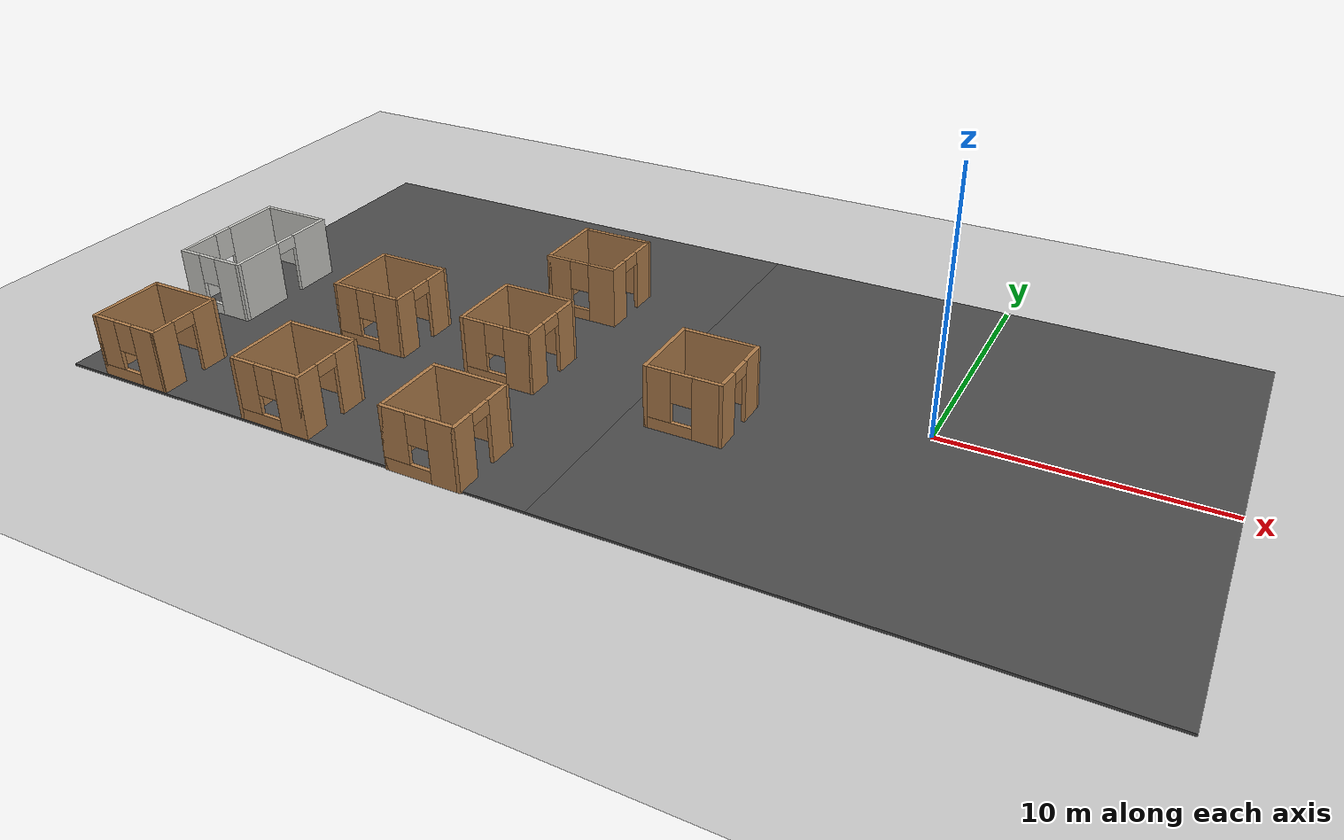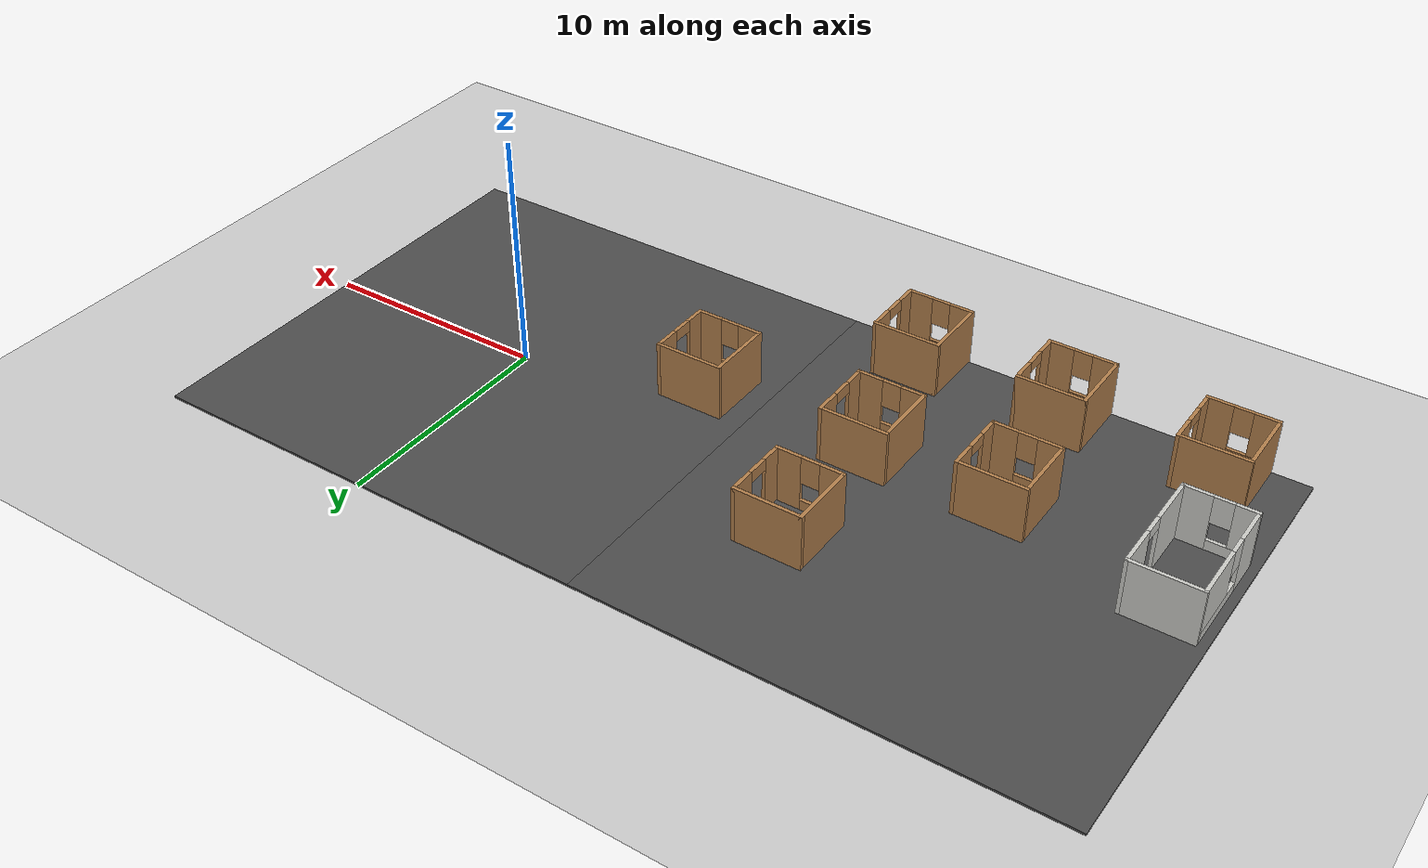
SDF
<sdf version="1.6">
 <world name="default">
  <model name="ground_plane">
   <static>1</static>
   <link name="link">
    <collision name="collision">
     <geometry><plane><normal>0 0 1</normal><size>100 100</size></plane></geometry>
     <surface><friction><ode><mu>100</mu><mu2>50</mu2></ode></friction></surface>
    </collision>
    <visual name="visual">
     <cast_shadows>0</cast_shadows>
     <geometry><plane><normal>0 0 1</normal><size>100 100</size></plane></geometry>
     <material>
      <script><uri>file://media/materials/scripts/gazebo.material</uri><name>Gazebo/Grey</name></script>
     </material>
    </visual>
   </link>
  </model>
  <model name="asphalt_plane">
   <static>1</static>
   <link name="link">
    <collision name="collision"><geometry><box><size>20 20 0.1</size></box></geometry></collision>
    <visual name="visual">
     <cast_shadows>0</cast_shadows>
     <geometry><box><size>20 20 0.1</size></box></geometry>
     <material>
      <script>
       <uri>model://asphalt_plane/materials/scripts</uri>
       <uri>model://asphalt_plane/materials/textures</uri>
       <name>vrc/asphalt</name>
      </script>
     </material>
    </visual>
   </link>
  </model>
  <model name="asphalt_plane_1">
   <static>1</static>
   <link name="link">
    <collision name="collision"><geometry><box><size>20 20 0.1</size></box></geometry></collision>
    <visual name="visual">
     <cast_shadows>0</cast_shadows>
     <geometry><box><size>20 20 0.1</size></box></geometry>
     <material>
      <script>
       <uri>model://asphalt_plane/materials/scripts</uri>
       <uri>model://asphalt_plane/materials/textures</uri>
       <name>vrc/asphalt</name>
      </script>
     </material>
    </visual>
   </link>
   <pose>-20 0 0 0 -0 0</pose>
  </model>
  <model name="house1_0_clone">
   <pose>-26.8484 -8.47265 0 0 -0 3.14</pose>
   <link name="Wall_2">
    <pose>0 1.425 0 0 -0 0</pose>
    <visual name="Wall_2_Visual_0">
     <pose>-0.9275 0 1.25 0 -0 0</pose>
     <geometry><box><size>1.145 0.15 2.5</size></box></geometry>
     <material>
      <script><uri>file://media/materials/scripts/gazebo.material</uri><name>Gazebo/Wood</name></script>
      <ambient>1 1 1 1</ambient>
     </material>
     <meta><layer>0</layer></meta>
    </visual>
    <collision name="Wall_2_Collision_0">
     <geometry><box><size>1.145 0.15 2.5</size></box></geometry>
     <pose>-0.9275 0 1.25 0 -0 0</pose>
    </collision>
    <visual name="Wall_2_Visual_1">
     <pose>0.5725 0 0.25 0 -0 0</pose>
     <geometry><box><size>1.855 0.15 0.5</size></box></geometry>
     <material>
      <script><uri>file://media/materials/scripts/gazebo.material</uri><name>Gazebo/Wood</name></script>
      <ambient>1 1 1 1</ambient>
     </material>
     <meta><layer>0</layer></meta>
    </visual>
    <collision name="Wall_2_Collision_1">
     <geometry><box><size>1.855 0.15 0.5</size></box></geometry>
     <pose>0.5725 0 0.25 0 -0 0</pose>
    </collision>
    <visual name="Wall_2_Visual_2">
     <pose>0.9725 0 1.5 0 -0 0</pose>
     <geometry><box><size>1.055 0.15 2</size></box></geometry>
     <material>
      <script><uri>file://media/materials/scripts/gazebo.material</uri><name>Gazebo/Wood</name></script>
      <ambient>1 1 1 1</ambient>
     </material>
     <meta><layer>0</layer></meta>
    </visual>
    <collision name="Wall_2_Collision_2">
     <geometry><box><size>1.055 0.15 2</size></box></geometry>
     <pose>0.9725 0 1.5 0 -0 0</pose>
    </collision>
    <visual name="Wall_2_Visual_3">
     <pose>0.045 0 1.9 0 -0 0</pose>
     <geometry><box><size>0.8 0.15 1.2</size></box></geometry>
     <material>
      <script><uri>file://media/materials/scripts/gazebo.material</uri><name>Gazebo/Wood</name></script>
      <ambient>1 1 1 1</ambient>
     </material>
     <meta><layer>0</layer></meta>
    </visual>
    <collision name="Wall_2_Collision_3">
     <geometry><box><size>0.8 0.15 1.2</size></box></geometry>
     <pose>0.045 0 1.9 0 -0 0</pose>
    </collision>
   </link>
   <link name="Wall_3">
    <collision name="Wall_3_Collision">
     <geometry><box><size>3 0.15 2.5</size></box></geometry>
     <pose>0 0 1.25 0 -0 0</pose>
    </collision>
    <visual name="Wall_3_Visual">
     <pose>0 0 1.25 0 -0 0</pose>
     <geometry><box><size>3 0.15 2.5</size></box></geometry>
     <material>
      <script><uri>file://media/materials/scripts/gazebo.material</uri><name>Gazebo/Wood</name></script>
      <ambient>1 1 1 1</ambient>
     </material>
     <meta><layer>0</layer></meta>
    </visual>
    <pose>1.425 0 0 0 -0 -1.5708</pose>
   </link>
   <link name="Wall_4">
    <collision name="Wall_4_Collision">
     <geometry><box><size>3 0.15 2.5</size></box></geometry>
     <pose>0 0 1.25 0 -0 0</pose>
    </collision>
    <visual name="Wall_4_Visual">
     <pose>0 0 1.25 0 -0 0</pose>
     <geometry><box><size>3 0.15 2.5</size></box></geometry>
     <material>
      <script><uri>file://media/materials/scripts/gazebo.material</uri><name>Gazebo/Wood</name></script>
      <ambient>1 1 1 1</ambient>
     </material>
     <meta><layer>0</layer></meta>
    </visual>
    <pose>0 -1.425 0 0 -0 3.14159</pose>
   </link>
   <link name="Wall_5">
    <pose>-1.425 0 0 0 -0 1.5708</pose>
    <visual name="Wall_5_Visual_0">
     <pose>-0.9325 0 1.25 0 -0 0</pose>
     <geometry><box><size>1.135 0.15 2.5</size></box></geometry>
     <material>
      <script><uri>file://media/materials/scripts/gazebo.material</uri><name>Gazebo/Wood</name></script>
      <ambient>1 1 1 1</ambient>
     </material>
     <meta><layer>0</layer></meta>
    </visual>
    <collision name="Wall_5_Collision_0">
     <geometry><box><size>1.135 0.15 2.5</size></box></geometry>
     <pose>-0.9325 0 1.25 0 -0 0</pose>
    </collision>
    <visual name="Wall_5_Visual_1">
     <pose>1.0175 0 1.25 0 -0 0</pose>
     <geometry><box><size>0.965 0.15 2.5</size></box></geometry>
     <material>
      <script><uri>file://media/materials/scripts/gazebo.material</uri><name>Gazebo/Wood</name></script>
      <ambient>1 1 1 1</ambient>
     </material>
     <meta><layer>0</layer></meta>
    </visual>
    <collision name="Wall_5_Collision_1">
     <geometry><box><size>0.965 0.15 2.5</size></box></geometry>
     <pose>1.0175 0 1.25 0 -0 0</pose>
    </collision>
    <visual name="Wall_5_Visual_2">
     <pose>0.085 0 2.25 0 -0 0</pose>
     <geometry><box><size>0.9 0.15 0.5</size></box></geometry>
     <material>
      <script><uri>file://media/materials/scripts/gazebo.material</uri><name>Gazebo/Wood</name></script>
      <ambient>1 1 1 1</ambient>
     </material>
     <meta><layer>0</layer></meta>
    </visual>
    <collision name="Wall_5_Collision_2">
     <geometry><box><size>0.9 0.15 0.5</size></box></geometry>
     <pose>0.085 0 2.25 0 -0 0</pose>
    </collision>
   </link>
   <static>1</static>
  </model>
  <model name="house1_0_clone_clone">
   <pose>-20.2462 -8.49294 0 0 -0 3.14</pose>
   <link name="Wall_2">
    <pose>0 1.425 0 0 -0 0</pose>
    <visual name="Wall_2_Visual_0">
     <pose>-0.9275 0 1.25 0 -0 0</pose>
     <geometry><box><size>1.145 0.15 2.5</size></box></geometry>
     <material>
      <script><uri>file://media/materials/scripts/gazebo.material</uri><name>Gazebo/Wood</name></script>
      <ambient>1 1 1 1</ambient>
     </material>
     <meta><layer>0</layer></meta>
    </visual>
    <collision name="Wall_2_Collision_0">
     <geometry><box><size>1.145 0.15 2.5</size></box></geometry>
     <pose>-0.9275 0 1.25 0 -0 0</pose>
    </collision>
    <visual name="Wall_2_Visual_1">
     <pose>0.5725 0 0.25 0 -0 0</pose>
     <geometry><box><size>1.855 0.15 0.5</size></box></geometry>
     <material>
      <script><uri>file://media/materials/scripts/gazebo.material</uri><name>Gazebo/Wood</name></script>
      <ambient>1 1 1 1</ambient>
     </material>
     <meta><layer>0</layer></meta>
    </visual>
    <collision name="Wall_2_Collision_1">
     <geometry><box><size>1.855 0.15 0.5</size></box></geometry>
     <pose>0.5725 0 0.25 0 -0 0</pose>
    </collision>
    <visual name="Wall_2_Visual_2">
     <pose>0.9725 0 1.5 0 -0 0</pose>
     <geometry><box><size>1.055 0.15 2</size></box></geometry>
     <material>
      <script><uri>file://media/materials/scripts/gazebo.material</uri><name>Gazebo/Wood</name></script>
      <ambient>1 1 1 1</ambient>
     </material>
     <meta><layer>0</layer></meta>
    </visual>
    <collision name="Wall_2_Collision_2">
     <geometry><box><size>1.055 0.15 2</size></box></geometry>
     <pose>0.9725 0 1.5 0 -0 0</pose>
    </collision>
    <visual name="Wall_2_Visual_3">
     <pose>0.045 0 1.9 0 -0 0</pose>
     <geometry><box><size>0.8 0.15 1.2</size></box></geometry>
     <material>
      <script><uri>file://media/materials/scripts/gazebo.material</uri><name>Gazebo/Wood</name></script>
      <ambient>1 1 1 1</ambient>
     </material>
     <meta><layer>0</layer></meta>
    </visual>
    <collision name="Wall_2_Collision_3">
     <geometry><box><size>0.8 0.15 1.2</size></box></geometry>
     <pose>0.045 0 1.9 0 -0 0</pose>
    </collision>
   </link>
   <link name="Wall_3">
    <collision name="Wall_3_Collision">
     <geometry><box><size>3 0.15 2.5</size></box></geometry>
     <pose>0 0 1.25 0 -0 0</pose>
    </collision>
    <visual name="Wall_3_Visual">
     <pose>0 0 1.25 0 -0 0</pose>
     <geometry><box><size>3 0.15 2.5</size></box></geometry>
     <material>
      <script><uri>file://media/materials/scripts/gazebo.material</uri><name>Gazebo/Wood</name></script>
      <ambient>1 1 1 1</ambient>
     </material>
     <meta><layer>0</layer></meta>
    </visual>
    <pose>1.425 0 0 0 -0 -1.5708</pose>
   </link>
   <link name="Wall_4">
    <collision name="Wall_4_Collision">
     <geometry><box><size>3 0.15 2.5</size></box></geometry>
     <pose>0 0 1.25 0 -0 0</pose>
    </collision>
    <visual name="Wall_4_Visual">
     <pose>0 0 1.25 0 -0 0</pose>
     <geometry><box><size>3 0.15 2.5</size></box></geometry>
     <material>
      <script><uri>file://media/materials/scripts/gazebo.material</uri><name>Gazebo/Wood</name></script>
      <ambient>1 1 1 1</ambient>
     </material>
     <meta><layer>0</layer></meta>
    </visual>
    <pose>0 -1.425 0 0 -0 3.14159</pose>
   </link>
   <link name="Wall_5">
    <pose>-1.425 0 0 0 -0 1.5708</pose>
    <visual name="Wall_5_Visual_0">
     <pose>-0.9325 0 1.25 0 -0 0</pose>
     <geometry><box><size>1.135 0.15 2.5</size></box></geometry>
     <material>
      <script><uri>file://media/materials/scripts/gazebo.material</uri><name>Gazebo/Wood</name></script>
      <ambient>1 1 1 1</ambient>
     </material>
     <meta><layer>0</layer></meta>
    </visual>
    <collision name="Wall_5_Collision_0">
     <geometry><box><size>1.135 0.15 2.5</size></box></geometry>
     <pose>-0.9325 0 1.25 0 -0 0</pose>
    </collision>
    <visual name="Wall_5_Visual_1">
     <pose>1.0175 0 1.25 0 -0 0</pose>
     <geometry><box><size>0.965 0.15 2.5</size></box></geometry>
     <material>
      <script><uri>file://media/materials/scripts/gazebo.material</uri><name>Gazebo/Wood</name></script>
      <ambient>1 1 1 1</ambient>
     </material>
     <meta><layer>0</layer></meta>
    </visual>
    <collision name="Wall_5_Collision_1">
     <geometry><box><size>0.965 0.15 2.5</size></box></geometry>
     <pose>1.0175 0 1.25 0 -0 0</pose>
    </collision>
    <visual name="Wall_5_Visual_2">
     <pose>0.085 0 2.25 0 -0 0</pose>
     <geometry><box><size>0.9 0.15 0.5</size></box></geometry>
     <material>
      <script><uri>file://media/materials/scripts/gazebo.material</uri><name>Gazebo/Wood</name></script>
      <ambient>1 1 1 1</ambient>
     </material>
     <meta><layer>0</layer></meta>
    </visual>
    <collision name="Wall_5_Collision_2">
     <geometry><box><size>0.9 0.15 0.5</size></box></geometry>
     <pose>0.085 0 2.25 0 -0 0</pose>
    </collision>
   </link>
   <static>1</static>
  </model>
  <model name="house1_0_clone_clone_0">
   <pose>-13.8661 -8.59167 0 0 -0 3.14</pose>
   <link name="Wall_2">
    <pose>0 1.425 0 0 -0 0</pose>
    <visual name="Wall_2_Visual_0">
     <pose>-0.9275 0 1.25 0 -0 0</pose>
     <geometry><box><size>1.145 0.15 2.5</size></box></geometry>
     <material>
      <script><uri>file://media/materials/scripts/gazebo.material</uri><name>Gazebo/Wood</name></script>
      <ambient>1 1 1 1</ambient>
     </material>
     <meta><layer>0</layer></meta>
    </visual>
    <collision name="Wall_2_Collision_0">
     <geometry><box><size>1.145 0.15 2.5</size></box></geometry>
     <pose>-0.9275 0 1.25 0 -0 0</pose>
    </collision>
    <visual name="Wall_2_Visual_1">
     <pose>0.5725 0 0.25 0 -0 0</pose>
     <geometry><box><size>1.855 0.15 0.5</size></box></geometry>
     <material>
      <script><uri>file://media/materials/scripts/gazebo.material</uri><name>Gazebo/Wood</name></script>
      <ambient>1 1 1 1</ambient>
     </material>
     <meta><layer>0</layer></meta>
    </visual>
    <collision name="Wall_2_Collision_1">
     <geometry><box><size>1.855 0.15 0.5</size></box></geometry>
     <pose>0.5725 0 0.25 0 -0 0</pose>
    </collision>
    <visual name="Wall_2_Visual_2">
     <pose>0.9725 0 1.5 0 -0 0</pose>
     <geometry><box><size>1.055 0.15 2</size></box></geometry>
     <material>
      <script><uri>file://media/materials/scripts/gazebo.material</uri><name>Gazebo/Wood</name></script>
      <ambient>1 1 1 1</ambient>
     </material>
     <meta><layer>0</layer></meta>
    </visual>
    <collision name="Wall_2_Collision_2">
     <geometry><box><size>1.055 0.15 2</size></box></geometry>
     <pose>0.9725 0 1.5 0 -0 0</pose>
    </collision>
    <visual name="Wall_2_Visual_3">
     <pose>0.045 0 1.9 0 -0 0</pose>
     <geometry><box><size>0.8 0.15 1.2</size></box></geometry>
     <material>
      <script><uri>file://media/materials/scripts/gazebo.material</uri><name>Gazebo/Wood</name></script>
      <ambient>1 1 1 1</ambient>
     </material>
     <meta><layer>0</layer></meta>
    </visual>
    <collision name="Wall_2_Collision_3">
     <geometry><box><size>0.8 0.15 1.2</size></box></geometry>
     <pose>0.045 0 1.9 0 -0 0</pose>
    </collision>
   </link>
   <link name="Wall_3">
    <collision name="Wall_3_Collision">
     <geometry><box><size>3 0.15 2.5</size></box></geometry>
     <pose>0 0 1.25 0 -0 0</pose>
    </collision>
    <visual name="Wall_3_Visual">
     <pose>0 0 1.25 0 -0 0</pose>
     <geometry><box><size>3 0.15 2.5</size></box></geometry>
     <material>
      <script><uri>file://media/materials/scripts/gazebo.material</uri><name>Gazebo/Wood</name></script>
      <ambient>1 1 1 1</ambient>
     </material>
     <meta><layer>0</layer></meta>
    </visual>
    <pose>1.425 0 0 0 -0 -1.5708</pose>
   </link>
   <link name="Wall_4">
    <collision name="Wall_4_Collision">
     <geometry><box><size>3 0.15 2.5</size></box></geometry>
     <pose>0 0 1.25 0 -0 0</pose>
    </collision>
    <visual name="Wall_4_Visual">
     <pose>0 0 1.25 0 -0 0</pose>
     <geometry><box><size>3 0.15 2.5</size></box></geometry>
     <material>
      <script><uri>file://media/materials/scripts/gazebo.material</uri><name>Gazebo/Wood</name></script>
      <ambient>1 1 1 1</ambient>
     </material>
     <meta><layer>0</layer></meta>
    </visual>
    <pose>0 -1.425 0 0 -0 3.14159</pose>
   </link>
   <link name="Wall_5">
    <pose>-1.425 0 0 0 -0 1.5708</pose>
    <visual name="Wall_5_Visual_0">
     <pose>-0.9325 0 1.25 0 -0 0</pose>
     <geometry><box><size>1.135 0.15 2.5</size></box></geometry>
     <material>
      <script><uri>file://media/materials/scripts/gazebo.material</uri><name>Gazebo/Wood</name></script>
      <ambient>1 1 1 1</ambient>
     </material>
     <meta><layer>0</layer></meta>
    </visual>
    <collision name="Wall_5_Collision_0">
     <geometry><box><size>1.135 0.15 2.5</size></box></geometry>
     <pose>-0.9325 0 1.25 0 -0 0</pose>
    </collision>
    <visual name="Wall_5_Visual_1">
     <pose>1.0175 0 1.25 0 -0 0</pose>
     <geometry><box><size>0.965 0.15 2.5</size></box></geometry>
     <material>
      <script><uri>file://media/materials/scripts/gazebo.material</uri><name>Gazebo/Wood</name></script>
      <ambient>1 1 1 1</ambient>
     </material>
     <meta><layer>0</layer></meta>
    </visual>
    <collision name="Wall_5_Collision_1">
     <geometry><box><size>0.965 0.15 2.5</size></box></geometry>
     <pose>1.0175 0 1.25 0 -0 0</pose>
    </collision>
    <visual name="Wall_5_Visual_2">
     <pose>0.085 0 2.25 0 -0 0</pose>
     <geometry><box><size>0.9 0.15 0.5</size></box></geometry>
     <material>
      <script><uri>file://media/materials/scripts/gazebo.material</uri><name>Gazebo/Wood</name></script>
      <ambient>1 1 1 1</ambient>
     </material>
     <meta><layer>0</layer></meta>
    </visual>
    <collision name="Wall_5_Collision_2">
     <geometry><box><size>0.9 0.15 0.5</size></box></geometry>
     <pose>0.085 0 2.25 0 -0 0</pose>
    </collision>
   </link>
   <static>1</static>
  </model>
  <model name="house2_clone_clone_clone">
   <pose>-28.129 -2 0 0 -0 1.57</pose>
   <link name="Wall_10">
    <pose>-2.425 -0 0 0 -0 1.5708</pose>
    <visual name="Wall_10_Visual_0">
     <pose>-0.8725 0 1.25 0 -0 0</pose>
     <geometry><box><size>1.255 0.15 2.5</size></box></geometry>
     <material>
      <script><uri>file://media/materials/scripts/gazebo.material</uri><name>Gazebo/CeilingTiled</name></script>
      <ambient>1 1 1 1</ambient>
     </material>
     <meta><layer>0</layer></meta>
    </visual>
    <collision name="Wall_10_Collision_0">
     <geometry><box><size>1.255 0.15 2.5</size></box></geometry>
     <pose>-0.8725 0 1.25 0 -0 0</pose>
    </collision>
    <visual name="Wall_10_Visual_1">
     <pose>0.6275 0 0.25 0 -0 0</pose>
     <geometry><box><size>1.745 0.15 0.5</size></box></geometry>
     <material>
      <script><uri>file://media/materials/scripts/gazebo.material</uri><name>Gazebo/CeilingTiled</name></script>
      <ambient>1 1 1 1</ambient>
     </material>
     <meta><layer>0</layer></meta>
    </visual>
    <collision name="Wall_10_Collision_1">
     <geometry><box><size>1.745 0.15 0.5</size></box></geometry>
     <pose>0.6275 0 0.25 0 -0 0</pose>
    </collision>
    <visual name="Wall_10_Visual_2">
     <pose>1.0275 0 1.5 0 -0 0</pose>
     <geometry><box><size>0.945 0.15 2</size></box></geometry>
     <material>
      <script><uri>file://media/materials/scripts/gazebo.material</uri><name>Gazebo/CeilingTiled</name></script>
      <ambient>1 1 1 1</ambient>
     </material>
     <meta><layer>0</layer></meta>
    </visual>
    <collision name="Wall_10_Collision_2">
     <geometry><box><size>0.945 0.15 2</size></box></geometry>
     <pose>1.0275 0 1.5 0 -0 0</pose>
    </collision>
    <visual name="Wall_10_Visual_3">
     <pose>0.155 0 1.9 0 -0 0</pose>
     <geometry><box><size>0.8 0.15 1.2</size></box></geometry>
     <material>
      <script><uri>file://media/materials/scripts/gazebo.material</uri><name>Gazebo/CeilingTiled</name></script>
      <ambient>1 1 1 1</ambient>
     </material>
     <meta><layer>0</layer></meta>
    </visual>
    <collision name="Wall_10_Collision_3">
     <geometry><box><size>0.8 0.15 1.2</size></box></geometry>
     <pose>0.155 0 1.9 0 -0 0</pose>
    </collision>
   </link>
   <link name="Wall_7">
    <pose>0 1.425 0 0 -0 0</pose>
    <visual name="Wall_7_Visual_0">
     <pose>-1.6375 0 1.25 0 -0 0</pose>
     <geometry><box><size>1.725 0.15 2.5</size></box></geometry>
     <material>
      <script><uri>file://media/materials/scripts/gazebo.material</uri><name>Gazebo/CeilingTiled</name></script>
      <ambient>1 1 1 1</ambient>
     </material>
     <meta><layer>0</layer></meta>
    </visual>
    <collision name="Wall_7_Collision_0">
     <geometry><box><size>1.725 0.15 2.5</size></box></geometry>
     <pose>-1.6375 0 1.25 0 -0 0</pose>
    </collision>
    <visual name="Wall_7_Visual_1">
     <pose>0.8625 0 0.25 0 -0 0</pose>
     <geometry><box><size>3.275 0.15 0.5</size></box></geometry>
     <material>
      <script><uri>file://media/materials/scripts/gazebo.material</uri><name>Gazebo/CeilingTiled</name></script>
      <ambient>1 1 1 1</ambient>
     </material>
     <meta><layer>0</layer></meta>
    </visual>
    <collision name="Wall_7_Collision_1">
     <geometry><box><size>3.275 0.15 0.5</size></box></geometry>
     <pose>0.8625 0 0.25 0 -0 0</pose>
    </collision>
    <visual name="Wall_7_Visual_2">
     <pose>1.2625 0 1.5 0 -0 0</pose>
     <geometry><box><size>2.475 0.15 2</size></box></geometry>
     <material>
      <script><uri>file://media/materials/scripts/gazebo.material</uri><name>Gazebo/CeilingTiled</name></script>
      <ambient>1 1 1 1</ambient>
     </material>
     <meta><layer>0</layer></meta>
    </visual>
    <collision name="Wall_7_Collision_2">
     <geometry><box><size>2.475 0.15 2</size></box></geometry>
     <pose>1.2625 0 1.5 0 -0 0</pose>
    </collision>
    <visual name="Wall_7_Visual_3">
     <pose>-0.375 0 1.9 0 -0 0</pose>
     <geometry><box><size>0.8 0.15 1.2</size></box></geometry>
     <material>
      <script><uri>file://media/materials/scripts/gazebo.material</uri><name>Gazebo/CeilingTiled</name></script>
      <ambient>1 1 1 1</ambient>
     </material>
     <meta><layer>0</layer></meta>
    </visual>
    <collision name="Wall_7_Collision_3">
     <geometry><box><size>0.8 0.15 1.2</size></box></geometry>
     <pose>-0.375 0 1.9 0 -0 0</pose>
    </collision>
   </link>
   <link name="Wall_8">
    <collision name="Wall_8_Collision">
     <geometry><box><size>3 0.15 2.5</size></box></geometry>
     <pose>0 0 1.25 0 -0 0</pose>
    </collision>
    <visual name="Wall_8_Visual">
     <pose>0 0 1.25 0 -0 0</pose>
     <geometry><box><size>3 0.15 2.5</size></box></geometry>
     <material>
      <script><uri>file://media/materials/scripts/gazebo.material</uri><name>Gazebo/CeilingTiled</name></script>
      <ambient>1 1 1 1</ambient>
     </material>
     <meta><layer>0</layer></meta>
    </visual>
    <pose>2.425 -0 0 0 -0 -1.5708</pose>
   </link>
   <link name="Wall_9">
    <pose>0 -1.425 0 0 -0 3.14159</pose>
    <visual name="Wall_9_Visual_0">
     <pose>-1.5725 0 1.25 0 -0 0</pose>
     <geometry><box><size>1.855 0.15 2.5</size></box></geometry>
     <material>
      <script><uri>file://media/materials/scripts/gazebo.material</uri><name>Gazebo/CeilingTiled</name></script>
      <ambient>1 1 1 1</ambient>
     </material>
     <meta><layer>0</layer></meta>
    </visual>
    <collision name="Wall_9_Collision_0">
     <geometry><box><size>1.855 0.15 2.5</size></box></geometry>
     <pose>-1.5725 0 1.25 0 -0 0</pose>
    </collision>
    <visual name="Wall_9_Visual_1">
     <pose>1.3775 0 1.25 0 -0 0</pose>
     <geometry><box><size>2.245 0.15 2.5</size></box></geometry>
     <material>
      <script><uri>file://media/materials/scripts/gazebo.material</uri><name>Gazebo/CeilingTiled</name></script>
      <ambient>1 1 1 1</ambient>
     </material>
     <meta><layer>0</layer></meta>
    </visual>
    <collision name="Wall_9_Collision_1">
     <geometry><box><size>2.245 0.15 2.5</size></box></geometry>
     <pose>1.3775 0 1.25 0 -0 0</pose>
    </collision>
    <visual name="Wall_9_Visual_2">
     <pose>-0.195 0 2.25 0 -0 0</pose>
     <geometry><box><size>0.9 0.15 0.5</size></box></geometry>
     <material>
      <script><uri>file://media/materials/scripts/gazebo.material</uri><name>Gazebo/CeilingTiled</name></script>
      <ambient>1 1 1 1</ambient>
     </material>
     <meta><layer>0</layer></meta>
    </visual>
    <collision name="Wall_9_Collision_2">
     <geometry><box><size>0.9 0.15 0.5</size></box></geometry>
     <pose>-0.195 0 2.25 0 -0 0</pose>
    </collision>
   </link>
   <static>1</static>
  </model>
  <model name="house1_0_clone_1_clone">
   <pose>-7.54187 -2.5 0 0 -0 3.14</pose>
   <link name="Wall_2">
    <pose>0 1.425 0 0 -0 0</pose>
    <visual name="Wall_2_Visual_0">
     <pose>-0.9275 0 1.25 0 -0 0</pose>
     <geometry><box><size>1.145 0.15 2.5</size></box></geometry>
     <material>
      <script><uri>file://media/materials/scripts/gazebo.material</uri><name>Gazebo/Wood</name></script>
      <ambient>1 1 1 1</ambient>
     </material>
     <meta><layer>0</layer></meta>
    </visual>
    <collision name="Wall_2_Collision_0">
     <geometry><box><size>1.145 0.15 2.5</size></box></geometry>
     <pose>-0.9275 0 1.25 0 -0 0</pose>
    </collision>
    <visual name="Wall_2_Visual_1">
     <pose>0.5725 0 0.25 0 -0 0</pose>
     <geometry><box><size>1.855 0.15 0.5</size></box></geometry>
     <material>
      <script><uri>file://media/materials/scripts/gazebo.material</uri><name>Gazebo/Wood</name></script>
      <ambient>1 1 1 1</ambient>
     </material>
     <meta><layer>0</layer></meta>
    </visual>
    <collision name="Wall_2_Collision_1">
     <geometry><box><size>1.855 0.15 0.5</size></box></geometry>
     <pose>0.5725 0 0.25 0 -0 0</pose>
    </collision>
    <visual name="Wall_2_Visual_2">
     <pose>0.9725 0 1.5 0 -0 0</pose>
     <geometry><box><size>1.055 0.15 2</size></box></geometry>
     <material>
      <script><uri>file://media/materials/scripts/gazebo.material</uri><name>Gazebo/Wood</name></script>
      <ambient>1 1 1 1</ambient>
     </material>
     <meta><layer>0</layer></meta>
    </visual>
    <collision name="Wall_2_Collision_2">
     <geometry><box><size>1.055 0.15 2</size></box></geometry>
     <pose>0.9725 0 1.5 0 -0 0</pose>
    </collision>
    <visual name="Wall_2_Visual_3">
     <pose>0.045 0 1.9 0 -0 0</pose>
     <geometry><box><size>0.8 0.15 1.2</size></box></geometry>
     <material>
      <script><uri>file://media/materials/scripts/gazebo.material</uri><name>Gazebo/Wood</name></script>
      <ambient>1 1 1 1</ambient>
     </material>
     <meta><layer>0</layer></meta>
    </visual>
    <collision name="Wall_2_Collision_3">
     <geometry><box><size>0.8 0.15 1.2</size></box></geometry>
     <pose>0.045 0 1.9 0 -0 0</pose>
    </collision>
   </link>
   <link name="Wall_3">
    <collision name="Wall_3_Collision">
     <geometry><box><size>3 0.15 2.5</size></box></geometry>
     <pose>0 0 1.25 0 -0 0</pose>
    </collision>
    <visual name="Wall_3_Visual">
     <pose>0 0 1.25 0 -0 0</pose>
     <geometry><box><size>3 0.15 2.5</size></box></geometry>
     <material>
      <script><uri>file://media/materials/scripts/gazebo.material</uri><name>Gazebo/Wood</name></script>
      <ambient>1 1 1 1</ambient>
     </material>
     <meta><layer>0</layer></meta>
    </visual>
    <pose>1.425 0 0 0 -0 -1.5708</pose>
   </link>
   <link name="Wall_4">
    <collision name="Wall_4_Collision">
     <geometry><box><size>3 0.15 2.5</size></box></geometry>
     <pose>0 0 1.25 0 -0 0</pose>
    </collision>
    <visual name="Wall_4_Visual">
     <pose>0 0 1.25 0 -0 0</pose>
     <geometry><box><size>3 0.15 2.5</size></box></geometry>
     <material>
      <script><uri>file://media/materials/scripts/gazebo.material</uri><name>Gazebo/Wood</name></script>
      <ambient>1 1 1 1</ambient>
     </material>
     <meta><layer>0</layer></meta>
    </visual>
    <pose>0 -1.425 0 0 -0 3.14159</pose>
   </link>
   <link name="Wall_5">
    <pose>-1.425 0 0 0 -0 1.5708</pose>
    <visual name="Wall_5_Visual_0">
     <pose>-0.9325 0 1.25 0 -0 0</pose>
     <geometry><box><size>1.135 0.15 2.5</size></box></geometry>
     <material>
      <script><uri>file://media/materials/scripts/gazebo.material</uri><name>Gazebo/Wood</name></script>
      <ambient>1 1 1 1</ambient>
     </material>
     <meta><layer>0</layer></meta>
    </visual>
    <collision name="Wall_5_Collision_0">
     <geometry><box><size>1.135 0.15 2.5</size></box></geometry>
     <pose>-0.9325 0 1.25 0 -0 0</pose>
    </collision>
    <visual name="Wall_5_Visual_1">
     <pose>1.0175 0 1.25 0 -0 0</pose>
     <geometry><box><size>0.965 0.15 2.5</size></box></geometry>
     <material>
      <script><uri>file://media/materials/scripts/gazebo.material</uri><name>Gazebo/Wood</name></script>
      <ambient>1 1 1 1</ambient>
     </material>
     <meta><layer>0</layer></meta>
    </visual>
    <collision name="Wall_5_Collision_1">
     <geometry><box><size>0.965 0.15 2.5</size></box></geometry>
     <pose>1.0175 0 1.25 0 -0 0</pose>
    </collision>
    <visual name="Wall_5_Visual_2">
     <pose>0.085 0 2.25 0 -0 0</pose>
     <geometry><box><size>0.9 0.15 0.5</size></box></geometry>
     <material>
      <script><uri>file://media/materials/scripts/gazebo.material</uri><name>Gazebo/Wood</name></script>
      <ambient>1 1 1 1</ambient>
     </material>
     <meta><layer>0</layer></meta>
    </visual>
    <collision name="Wall_5_Collision_2">
     <geometry><box><size>0.9 0.15 0.5</size></box></geometry>
     <pose>0.085 0 2.25 0 -0 0</pose>
    </collision>
   </link>
   <static>1</static>
  </model>
  <model name="house1_0_clone_1_clone_0">
   <pose>-15.0379 -2.5 0 0 -0 3.14</pose>
   <link name="Wall_2">
    <pose>0 1.425 0 0 -0 0</pose>
    <visual name="Wall_2_Visual_0">
     <pose>-0.9275 0 1.25 0 -0 0</pose>
     <geometry><box><size>1.145 0.15 2.5</size></box></geometry>
     <material>
      <script><uri>file://media/materials/scripts/gazebo.material</uri><name>Gazebo/Wood</name></script>
      <ambient>1 1 1 1</ambient>
     </material>
     <meta><layer>0</layer></meta>
    </visual>
    <collision name="Wall_2_Collision_0">
     <geometry><box><size>1.145 0.15 2.5</size></box></geometry>
     <pose>-0.9275 0 1.25 0 -0 0</pose>
    </collision>
    <visual name="Wall_2_Visual_1">
     <pose>0.5725 0 0.25 0 -0 0</pose>
     <geometry><box><size>1.855 0.15 0.5</size></box></geometry>
     <material>
      <script><uri>file://media/materials/scripts/gazebo.material</uri><name>Gazebo/Wood</name></script>
      <ambient>1 1 1 1</ambient>
     </material>
     <meta><layer>0</layer></meta>
    </visual>
    <collision name="Wall_2_Collision_1">
     <geometry><box><size>1.855 0.15 0.5</size></box></geometry>
     <pose>0.5725 0 0.25 0 -0 0</pose>
    </collision>
    <visual name="Wall_2_Visual_2">
     <pose>0.9725 0 1.5 0 -0 0</pose>
     <geometry><box><size>1.055 0.15 2</size></box></geometry>
     <material>
      <script><uri>file://media/materials/scripts/gazebo.material</uri><name>Gazebo/Wood</name></script>
      <ambient>1 1 1 1</ambient>
     </material>
     <meta><layer>0</layer></meta>
    </visual>
    <collision name="Wall_2_Collision_2">
     <geometry><box><size>1.055 0.15 2</size></box></geometry>
     <pose>0.9725 0 1.5 0 -0 0</pose>
    </collision>
    <visual name="Wall_2_Visual_3">
     <pose>0.045 0 1.9 0 -0 0</pose>
     <geometry><box><size>0.8 0.15 1.2</size></box></geometry>
     <material>
      <script><uri>file://media/materials/scripts/gazebo.material</uri><name>Gazebo/Wood</name></script>
      <ambient>1 1 1 1</ambient>
     </material>
     <meta><layer>0</layer></meta>
    </visual>
    <collision name="Wall_2_Collision_3">
     <geometry><box><size>0.8 0.15 1.2</size></box></geometry>
     <pose>0.045 0 1.9 0 -0 0</pose>
    </collision>
   </link>
   <link name="Wall_3">
    <collision name="Wall_3_Collision">
     <geometry><box><size>3 0.15 2.5</size></box></geometry>
     <pose>0 0 1.25 0 -0 0</pose>
    </collision>
    <visual name="Wall_3_Visual">
     <pose>0 0 1.25 0 -0 0</pose>
     <geometry><box><size>3 0.15 2.5</size></box></geometry>
     <material>
      <script><uri>file://media/materials/scripts/gazebo.material</uri><name>Gazebo/Wood</name></script>
      <ambient>1 1 1 1</ambient>
     </material>
     <meta><layer>0</layer></meta>
    </visual>
    <pose>1.425 0 0 0 -0 -1.5708</pose>
   </link>
   <link name="Wall_4">
    <collision name="Wall_4_Collision">
     <geometry><box><size>3 0.15 2.5</size></box></geometry>
     <pose>0 0 1.25 0 -0 0</pose>
    </collision>
    <visual name="Wall_4_Visual">
     <pose>0 0 1.25 0 -0 0</pose>
     <geometry><box><size>3 0.15 2.5</size></box></geometry>
     <material>
      <script><uri>file://media/materials/scripts/gazebo.material</uri><name>Gazebo/Wood</name></script>
      <ambient>1 1 1 1</ambient>
     </material>
     <meta><layer>0</layer></meta>
    </visual>
    <pose>0 -1.425 0 0 -0 3.14159</pose>
   </link>
   <link name="Wall_5">
    <pose>-1.425 0 0 0 -0 1.5708</pose>
    <visual name="Wall_5_Visual_0">
     <pose>-0.9325 0 1.25 0 -0 0</pose>
     <geometry><box><size>1.135 0.15 2.5</size></box></geometry>
     <material>
      <script><uri>file://media/materials/scripts/gazebo.material</uri><name>Gazebo/Wood</name></script>
      <ambient>1 1 1 1</ambient>
     </material>
     <meta><layer>0</layer></meta>
    </visual>
    <collision name="Wall_5_Collision_0">
     <geometry><box><size>1.135 0.15 2.5</size></box></geometry>
     <pose>-0.9325 0 1.25 0 -0 0</pose>
    </collision>
    <visual name="Wall_5_Visual_1">
     <pose>1.0175 0 1.25 0 -0 0</pose>
     <geometry><box><size>0.965 0.15 2.5</size></box></geometry>
     <material>
      <script><uri>file://media/materials/scripts/gazebo.material</uri><name>Gazebo/Wood</name></script>
      <ambient>1 1 1 1</ambient>
     </material>
     <meta><layer>0</layer></meta>
    </visual>
    <collision name="Wall_5_Collision_1">
     <geometry><box><size>0.965 0.15 2.5</size></box></geometry>
     <pose>1.0175 0 1.25 0 -0 0</pose>
    </collision>
    <visual name="Wall_5_Visual_2">
     <pose>0.085 0 2.25 0 -0 0</pose>
     <geometry><box><size>0.9 0.15 0.5</size></box></geometry>
     <material>
      <script><uri>file://media/materials/scripts/gazebo.material</uri><name>Gazebo/Wood</name></script>
      <ambient>1 1 1 1</ambient>
     </material>
     <meta><layer>0</layer></meta>
    </visual>
    <collision name="Wall_5_Collision_2">
     <geometry><box><size>0.9 0.15 0.5</size></box></geometry>
     <pose>0.085 0 2.25 0 -0 0</pose>
    </collision>
   </link>
   <static>1</static>
  </model>
  <model name="house1_0_clone_1_clone_1">
   <pose>-20.8127 -2.5 0 0 -0 3.14</pose>
   <link name="Wall_2">
    <pose>0 1.425 0 0 -0 0</pose>
    <visual name="Wall_2_Visual_0">
     <pose>-0.9275 0 1.25 0 -0 0</pose>
     <geometry><box><size>1.145 0.15 2.5</size></box></geometry>
     <material>
      <script><uri>file://media/materials/scripts/gazebo.material</uri><name>Gazebo/Wood</name></script>
      <ambient>1 1 1 1</ambient>
     </material>
     <meta><layer>0</layer></meta>
    </visual>
    <collision name="Wall_2_Collision_0">
     <geometry><box><size>1.145 0.15 2.5</size></box></geometry>
     <pose>-0.9275 0 1.25 0 -0 0</pose>
    </collision>
    <visual name="Wall_2_Visual_1">
     <pose>0.5725 0 0.25 0 -0 0</pose>
     <geometry><box><size>1.855 0.15 0.5</size></box></geometry>
     <material>
      <script><uri>file://media/materials/scripts/gazebo.material</uri><name>Gazebo/Wood</name></script>
      <ambient>1 1 1 1</ambient>
     </material>
     <meta><layer>0</layer></meta>
    </visual>
    <collision name="Wall_2_Collision_1">
     <geometry><box><size>1.855 0.15 0.5</size></box></geometry>
     <pose>0.5725 0 0.25 0 -0 0</pose>
    </collision>
    <visual name="Wall_2_Visual_2">
     <pose>0.9725 0 1.5 0 -0 0</pose>
     <geometry><box><size>1.055 0.15 2</size></box></geometry>
     <material>
      <script><uri>file://media/materials/scripts/gazebo.material</uri><name>Gazebo/Wood</name></script>
      <ambient>1 1 1 1</ambient>
     </material>
     <meta><layer>0</layer></meta>
    </visual>
    <collision name="Wall_2_Collision_2">
     <geometry><box><size>1.055 0.15 2</size></box></geometry>
     <pose>0.9725 0 1.5 0 -0 0</pose>
    </collision>
    <visual name="Wall_2_Visual_3">
     <pose>0.045 0 1.9 0 -0 0</pose>
     <geometry><box><size>0.8 0.15 1.2</size></box></geometry>
     <material>
      <script><uri>file://media/materials/scripts/gazebo.material</uri><name>Gazebo/Wood</name></script>
      <ambient>1 1 1 1</ambient>
     </material>
     <meta><layer>0</layer></meta>
    </visual>
    <collision name="Wall_2_Collision_3">
     <geometry><box><size>0.8 0.15 1.2</size></box></geometry>
     <pose>0.045 0 1.9 0 -0 0</pose>
    </collision>
   </link>
   <link name="Wall_3">
    <collision name="Wall_3_Collision">
     <geometry><box><size>3 0.15 2.5</size></box></geometry>
     <pose>0 0 1.25 0 -0 0</pose>
    </collision>
    <visual name="Wall_3_Visual">
     <pose>0 0 1.25 0 -0 0</pose>
     <geometry><box><size>3 0.15 2.5</size></box></geometry>
     <material>
      <script><uri>file://media/materials/scripts/gazebo.material</uri><name>Gazebo/Wood</name></script>
      <ambient>1 1 1 1</ambient>
     </material>
     <meta><layer>0</layer></meta>
    </visual>
    <pose>1.425 0 0 0 -0 -1.5708</pose>
   </link>
   <link name="Wall_4">
    <collision name="Wall_4_Collision">
     <geometry><box><size>3 0.15 2.5</size></box></geometry>
     <pose>0 0 1.25 0 -0 0</pose>
    </collision>
    <visual name="Wall_4_Visual">
     <pose>0 0 1.25 0 -0 0</pose>
     <geometry><box><size>3 0.15 2.5</size></box></geometry>
     <material>
      <script><uri>file://media/materials/scripts/gazebo.material</uri><name>Gazebo/Wood</name></script>
      <ambient>1 1 1 1</ambient>
     </material>
     <meta><layer>0</layer></meta>
    </visual>
    <pose>0 -1.425 0 0 -0 3.14159</pose>
   </link>
   <link name="Wall_5">
    <pose>-1.425 0 0 0 -0 1.5708</pose>
    <visual name="Wall_5_Visual_0">
     <pose>-0.9325 0 1.25 0 -0 0</pose>
     <geometry><box><size>1.135 0.15 2.5</size></box></geometry>
     <material>
      <script><uri>file://media/materials/scripts/gazebo.material</uri><name>Gazebo/Wood</name></script>
      <ambient>1 1 1 1</ambient>
     </material>
     <meta><layer>0</layer></meta>
    </visual>
    <collision name="Wall_5_Collision_0">
     <geometry><box><size>1.135 0.15 2.5</size></box></geometry>
     <pose>-0.9325 0 1.25 0 -0 0</pose>
    </collision>
    <visual name="Wall_5_Visual_1">
     <pose>1.0175 0 1.25 0 -0 0</pose>
     <geometry><box><size>0.965 0.15 2.5</size></box></geometry>
     <material>
      <script><uri>file://media/materials/scripts/gazebo.material</uri><name>Gazebo/Wood</name></script>
      <ambient>1 1 1 1</ambient>
     </material>
     <meta><layer>0</layer></meta>
    </visual>
    <collision name="Wall_5_Collision_1">
     <geometry><box><size>0.965 0.15 2.5</size></box></geometry>
     <pose>1.0175 0 1.25 0 -0 0</pose>
    </collision>
    <visual name="Wall_5_Visual_2">
     <pose>0.085 0 2.25 0 -0 0</pose>
     <geometry><box><size>0.9 0.15 0.5</size></box></geometry>
     <material>
      <script><uri>file://media/materials/scripts/gazebo.material</uri><name>Gazebo/Wood</name></script>
      <ambient>1 1 1 1</ambient>
     </material>
     <meta><layer>0</layer></meta>
    </visual>
    <collision name="Wall_5_Collision_2">
     <geometry><box><size>0.9 0.15 0.5</size></box></geometry>
     <pose>0.085 0 2.25 0 -0 0</pose>
    </collision>
   </link>
   <static>1</static>
  </model>
  <model name="house1_0_clone_0">
   <pose>-14.9594 3.28207 0 0 -0 3.14</pose>
   <link name="Wall_2">
    <pose>0 1.425 0 0 -0 0</pose>
    <visual name="Wall_2_Visual_0">
     <pose>-0.9275 0 1.25 0 -0 0</pose>
     <geometry><box><size>1.145 0.15 2.5</size></box></geometry>
     <material>
      <script><uri>file://media/materials/scripts/gazebo.material</uri><name>Gazebo/Wood</name></script>
      <ambient>1 1 1 1</ambient>
     </material>
     <meta><layer>0</layer></meta>
    </visual>
    <collision name="Wall_2_Collision_0">
     <geometry><box><size>1.145 0.15 2.5</size></box></geometry>
     <pose>-0.9275 0 1.25 0 -0 0</pose>
    </collision>
    <visual name="Wall_2_Visual_1">
     <pose>0.5725 0 0.25 0 -0 0</pose>
     <geometry><box><size>1.855 0.15 0.5</size></box></geometry>
     <material>
      <script><uri>file://media/materials/scripts/gazebo.material</uri><name>Gazebo/Wood</name></script>
      <ambient>1 1 1 1</ambient>
     </material>
     <meta><layer>0</layer></meta>
    </visual>
    <collision name="Wall_2_Collision_1">
     <geometry><box><size>1.855 0.15 0.5</size></box></geometry>
     <pose>0.5725 0 0.25 0 -0 0</pose>
    </collision>
    <visual name="Wall_2_Visual_2">
     <pose>0.9725 0 1.5 0 -0 0</pose>
     <geometry><box><size>1.055 0.15 2</size></box></geometry>
     <material>
      <script><uri>file://media/materials/scripts/gazebo.material</uri><name>Gazebo/Wood</name></script>
      <ambient>1 1 1 1</ambient>
     </material>
     <meta><layer>0</layer></meta>
    </visual>
    <collision name="Wall_2_Collision_2">
     <geometry><box><size>1.055 0.15 2</size></box></geometry>
     <pose>0.9725 0 1.5 0 -0 0</pose>
    </collision>
    <visual name="Wall_2_Visual_3">
     <pose>0.045 0 1.9 0 -0 0</pose>
     <geometry><box><size>0.8 0.15 1.2</size></box></geometry>
     <material>
      <script><uri>file://media/materials/scripts/gazebo.material</uri><name>Gazebo/Wood</name></script>
      <ambient>1 1 1 1</ambient>
     </material>
     <meta><layer>0</layer></meta>
    </visual>
    <collision name="Wall_2_Collision_3">
     <geometry><box><size>0.8 0.15 1.2</size></box></geometry>
     <pose>0.045 0 1.9 0 -0 0</pose>
    </collision>
   </link>
   <link name="Wall_3">
    <collision name="Wall_3_Collision">
     <geometry><box><size>3 0.15 2.5</size></box></geometry>
     <pose>0 0 1.25 0 -0 0</pose>
    </collision>
    <visual name="Wall_3_Visual">
     <pose>0 0 1.25 0 -0 0</pose>
     <geometry><box><size>3 0.15 2.5</size></box></geometry>
     <material>
      <script><uri>file://media/materials/scripts/gazebo.material</uri><name>Gazebo/Wood</name></script>
      <ambient>1 1 1 1</ambient>
     </material>
     <meta><layer>0</layer></meta>
    </visual>
    <pose>1.425 0 0 0 -0 -1.5708</pose>
   </link>
   <link name="Wall_4">
    <collision name="Wall_4_Collision">
     <geometry><box><size>3 0.15 2.5</size></box></geometry>
     <pose>0 0 1.25 0 -0 0</pose>
    </collision>
    <visual name="Wall_4_Visual">
     <pose>0 0 1.25 0 -0 0</pose>
     <geometry><box><size>3 0.15 2.5</size></box></geometry>
     <material>
      <script><uri>file://media/materials/scripts/gazebo.material</uri><name>Gazebo/Wood</name></script>
      <ambient>1 1 1 1</ambient>
     </material>
     <meta><layer>0</layer></meta>
    </visual>
    <pose>0 -1.425 0 0 -0 3.14159</pose>
   </link>
   <link name="Wall_5">
    <pose>-1.425 0 0 0 -0 1.5708</pose>
    <visual name="Wall_5_Visual_0">
     <pose>-0.9325 0 1.25 0 -0 0</pose>
     <geometry><box><size>1.135 0.15 2.5</size></box></geometry>
     <material>
      <script><uri>file://media/materials/scripts/gazebo.material</uri><name>Gazebo/Wood</name></script>
      <ambient>1 1 1 1</ambient>
     </material>
     <meta><layer>0</layer></meta>
    </visual>
    <collision name="Wall_5_Collision_0">
     <geometry><box><size>1.135 0.15 2.5</size></box></geometry>
     <pose>-0.9325 0 1.25 0 -0 0</pose>
    </collision>
    <visual name="Wall_5_Visual_1">
     <pose>1.0175 0 1.25 0 -0 0</pose>
     <geometry><box><size>0.965 0.15 2.5</size></box></geometry>
     <material>
      <script><uri>file://media/materials/scripts/gazebo.material</uri><name>Gazebo/Wood</name></script>
      <ambient>1 1 1 1</ambient>
     </material>
     <meta><layer>0</layer></meta>
    </visual>
    <collision name="Wall_5_Collision_1">
     <geometry><box><size>0.965 0.15 2.5</size></box></geometry>
     <pose>1.0175 0 1.25 0 -0 0</pose>
    </collision>
    <visual name="Wall_5_Visual_2">
     <pose>0.085 0 2.25 0 -0 0</pose>
     <geometry><box><size>0.9 0.15 0.5</size></box></geometry>
     <material>
      <script><uri>file://media/materials/scripts/gazebo.material</uri><name>Gazebo/Wood</name></script>
      <ambient>1 1 1 1</ambient>
     </material>
     <meta><layer>0</layer></meta>
    </visual>
    <collision name="Wall_5_Collision_2">
     <geometry><box><size>0.9 0.15 0.5</size></box></geometry>
     <pose>0.085 0 2.25 0 -0 0</pose>
    </collision>
   </link>
   <static>1</static>
  </model>
 </world>
</sdf>
